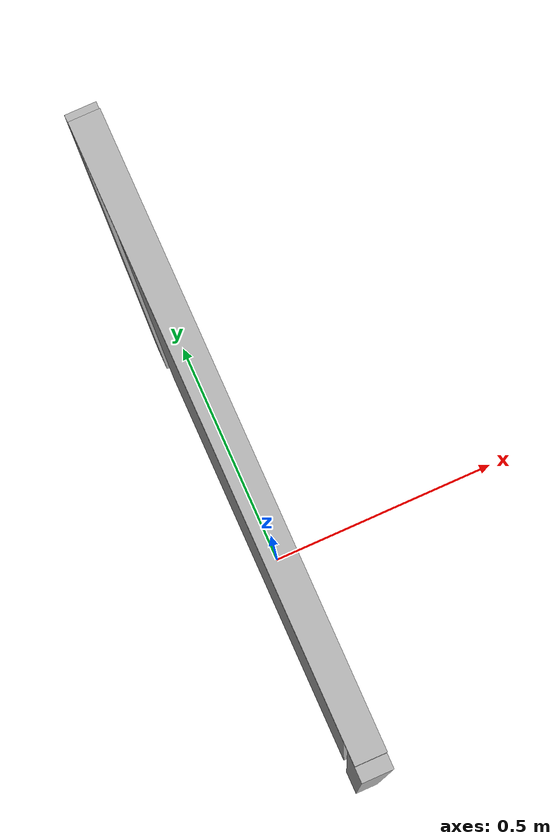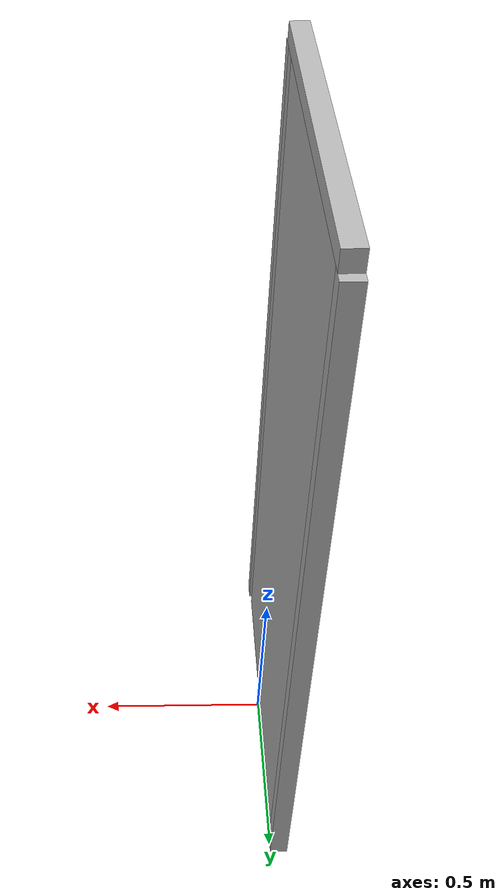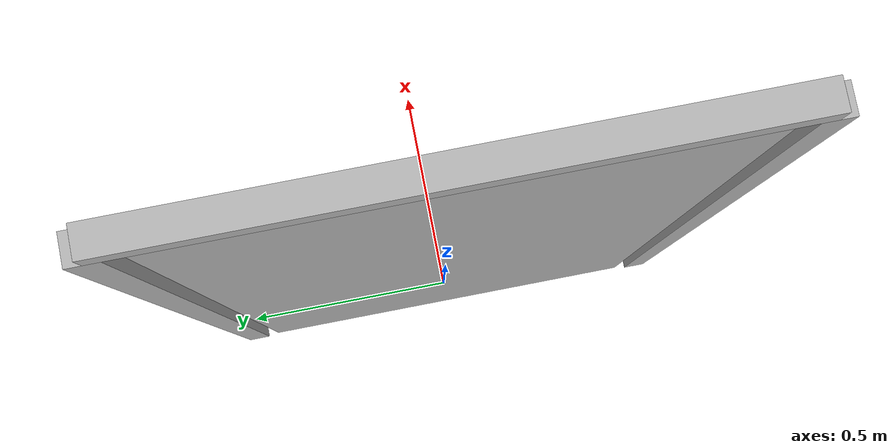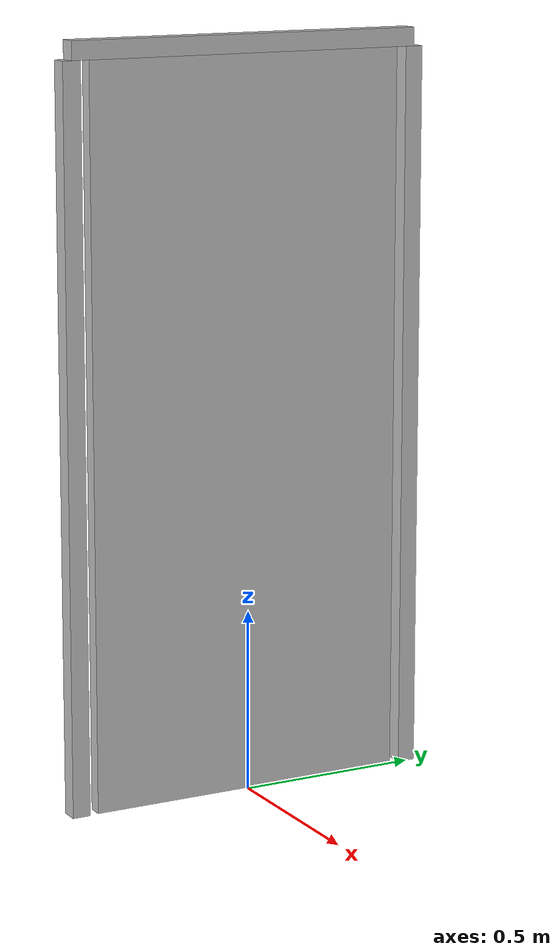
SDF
<?xml version="1.0"?>
<sdf version="1.6">
  <model name="simple_door">
    <link name="frame_left">
      <pose>-0.025 0.5 1.0 0 0 0</pose>
      <visual name="v_fl"><geometry><box><size>0.05 0.05 2.0</size></box></geometry></visual>
      <collision name="c_fl"><geometry><box><size>0.05 0.05 2.0</size></box></geometry></collision>
      <static>true</static>
    </link>
    <link name="frame_right">
      <pose>-0.025 -0.5 1.0 0 0 0</pose>
      <visual name="v_fr"><geometry><box><size>0.05 0.05 2.0</size></box></geometry></visual>
      <collision name="c_fr"><geometry><box><size>0.05 0.05 2.0</size></box></geometry></collision>
      <static>true</static>
    </link>
    <link name="frame_top">
      <pose>-0.025 0 2.025 0 0 0</pose>
      <visual name="v_ft"><geometry><box><size>0.05 1.0 0.05</size></box></geometry></visual>
      <collision name="c_ft"><geometry><box><size>0.05 1.0 0.05</size></box></geometry></collision>
      <static>true</static>
    </link>

    <link name="door_panel">
      <pose>-0.025 0 1.0 0 0 0</pose>
      <inertial>
        <mass>10</mass>
        <inertia><ixx>1</ixx><iyy>1</iyy><izz>1</izz></inertia>
      </inertial>
      <visual name="v_d"><geometry><box><size>0.04 0.9 2.0</size></box></geometry></visual>
      <collision name="c_d"><geometry><box><size>0.04 0.9 2.0</size></box></geometry></collision>
    </link>

    <joint name="hinge" type="revolute">
      <parent>frame_left</parent>
      <child>door_panel</child>
      <axis>
        <xyz>0 0 1</xyz>
        <limit>
          <lower>0</lower>
          <upper>1.57</upper>
        </limit>
      </axis>
    </joint>
  </model>
</sdf>
